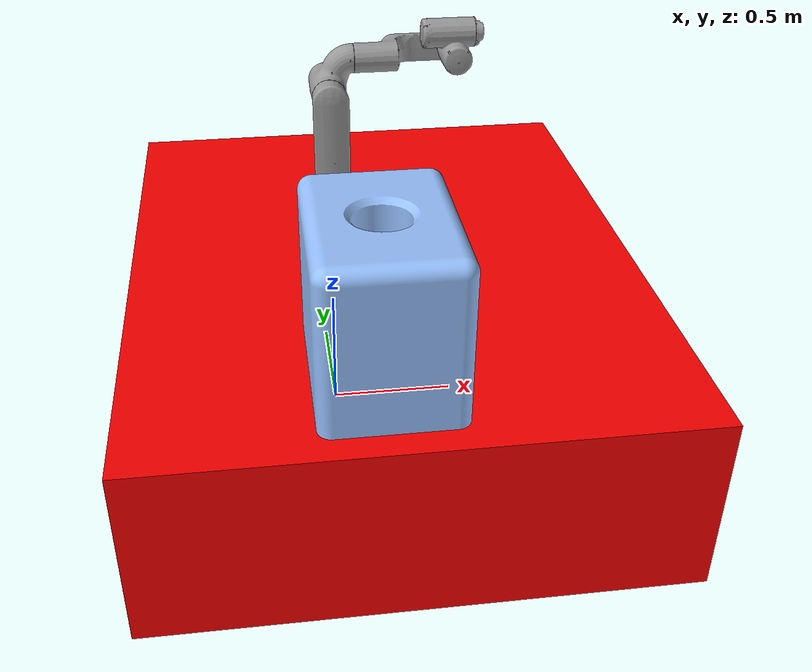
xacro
<?xml version="1.0"?>
<robot xmlns:xacro="http://www.ros.org/wiki/xacro" name="abb_gofa">
    <xacro:arg name="initial_positions_file" default="initial_positions.yaml" />

    <!-- Import abb_gofa urdf file -->
    <xacro:include filename="$(find abb_gofa_description)/urdf/abb_gofa/abb_gofa.urdf.xacro" />

    <!-- Import control_xacro -->
    <xacro:include filename="abb_gofa.ros2_control.xacro" />

    <xacro:abb_gofa_ros2_control name="FakeSystem" initial_positions_file="$(arg initial_positions_file)"/>

</robot>

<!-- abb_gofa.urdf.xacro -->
<robot name="abb_gofa" xmlns:xacro="http://www.ros.org/wiki/xacro">
    <xacro:include filename="$(find abb_gofa_description)/urdf/abb_gofa/abb_gofa_macro.urdf.xacro"/>
    <xacro:abb_gofa />

    <link name="world"> </link>

    <link name='table'>
      <inertial>
        <origin xyz="0 0 0" rpy="0 0 0"/>
        <mass value="100"/>
        <inertia ixx="0.01"  ixy="0"  ixz="0" iyy="0.01" iyz="0" izz="0.01" />
      </inertial>
      <collision name='collision'>
        <origin xyz="0 0 0" rpy=" 0 0 0"/>
        <geometry>
          <box size = "2.0 2.5 0.7"/>
        </geometry>
      </collision>
      <visual name='chassis_visual'>
        <origin xyz="0 0 0" rpy=" 0 0 0"/>
        <geometry>
          <box size = "2.0 2.5 0.7"/>
        </geometry>
        <material name="black">
          <color rgba="1 0 0 1"/>
        </material>
      </visual>
    </link>

    <joint name="table_world" type="fixed">
      <parent link="world" />
      <child link = "table" />
      <origin xyz="0.2 0.0 0.35" rpy="0.0 0.0 0.0" />
    </joint>
    <joint name="table_base" type="fixed">
      <parent link="table" />
      <child link = "base_link" />
      <origin xyz="-0.2 -0.0 0.355" rpy="0.0 0.0 0.0" />
    </joint>

    <link name="NMR">
      <visual>
        <origin xyz="0.0 0.0 0.0" rpy="0.0 0.0 0.0"/>
        <geometry>
            <mesh filename="file://$(find abb_gofa_description)/meshes/NMR/NMR.dae"/>
        </geometry>
      </visual>
      <collision>
        <origin xyz="0.0 0.0 0.0" rpy="0.0 0.0 0.0"/>
        <geometry>
            <mesh filename="file://$(find abb_gofa_description)/meshes/NMR/NMR.dae"/>
        </geometry>
      </collision>
      <inertial>
        <origin xyz="0.0 0.0 0.0" rpy="0.0 0.0 0.0"/>
        <mass value="50"/>
        <inertia ixx="0.01" ixy="0.0" ixz="0.0" iyy="0.01" iyz="0.0" izz="0.01"/>
      </inertial>
    </link>

    <joint name="world2NMR" type="fixed">
      <parent link="world" />
      <child link = "NMR" />
      <origin xyz="0.1 -0.8 0.70" rpy="0.0 0.0 -1.570796"/>
    </joint>

</robot>

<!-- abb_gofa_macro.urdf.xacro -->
<robot xmlns:xacro="http://www.ros.org/wiki/xacro">

    <xacro:macro name="abb_gofa">

        <xacro:include filename="$(find abb_gofa_description)/urdf/abb_gofa/abb_gofa_ros2_control.urdf.xacro" />
        <xacro:insert_ros2_control/>

        <!-- BASE LINK -->
        <link name="base_link">
            <visual>
            <origin rpy="0.0 0.0 0.0" xyz="0.0 0.0 0.0"/>
            <geometry>
                <mesh filename="file://$(find abb_gofa_description)/meshes/abb_gofa/visual/base_link.dae"/>
            </geometry>
            <material name="light_grey">
                <color rgba="0.6 0.6 0.6 1.0"/>
            </material>
            </visual>
            <collision>
            <origin rpy="0.0 0.0 0.0" xyz="0.0 0.0 0.0"/>
            <geometry>
                <mesh filename="file://$(find abb_gofa_description)/meshes/abb_gofa/collision/base_link.dae"/>
            </geometry>
            </collision>
            <inertial>
            <origin rpy="0.0 0.0 0.0" xyz="0.0 0.0 0.0"/>
            <mass value="3.5"/>
            <inertia ixx="0.015" ixy="0.0" ixz="0.0" iyy="0.016" iyz="0.0" izz="0.01"/>
            </inertial>
        </link>
        <link name="link_1">
            <visual>
            <origin rpy="0.0 0.0 0.0" xyz="0.0 0.0 0.0"/>
            <geometry>
                <mesh filename="file://$(find abb_gofa_description)/meshes/abb_gofa/visual/link_1.dae"/>
            </geometry>
            <material name="light_grey">
                <color rgba="0.6 0.6 0.6 1.0"/>
            </material>
            </visual>
            <collision>
            <origin rpy="0.0 0.0 0.0" xyz="0.0 0.0 0.0"/>
            <geometry>
                <mesh filename="file://$(find abb_gofa_description)/meshes/abb_gofa/collision/link_1.dae"/>
            </geometry>
            </collision>
            <inertial>
            <origin rpy="0.0 0.0 0.0" xyz="0.0 0.0 0.0"/>
            <mass value="2.8"/>
            <inertia ixx="0.01" ixy="0.0" ixz="0.0" iyy="0.006" iyz="0.0" izz="0.01"/>
            </inertial>
        </link>
        <link name="link_2">
            <visual>
            <origin rpy="0.0 0.0 0.0" xyz="0.0 0.0 0.0"/>
            <geometry>
                <mesh filename="file://$(find abb_gofa_description)/meshes/abb_gofa/visual/link_2.dae"/>
            </geometry>
            <material name="light_grey">
                <color rgba="0.6 0.6 0.6 1.0"/>
            </material>
            </visual>
            <collision>
            <origin rpy="0.0 0.0 0.0" xyz="0.0 0.0 0.0"/>
            <geometry>
                <mesh filename="file://$(find abb_gofa_description)/meshes/abb_gofa/collision/link_2.dae"/>
            </geometry>
            </collision>
            <inertial>
            <origin rpy="0.0 0.0 0.0" xyz="0.0 0.0 0.0"/>
            <mass value="4.29"/>
            <inertia ixx="0.13" ixy="0.0" ixz="0.0" iyy="0.13" iyz="0.0" izz="0.006"/>
            </inertial>
        </link>
        <link name="link_3">
            <visual>
                <origin rpy="0.0 0.0 0.0" xyz="0.0 0.0 0.0"/>
                <geometry>
                    <mesh filename="file://$(find abb_gofa_description)/meshes/abb_gofa/visual/link_3.dae"/>
                </geometry>
                <material name="light_grey">
                    <color rgba="0.6 0.6 0.6 1.0"/>
                </material>
            </visual>
            <collision>
                <origin rpy="0.0 0.0 0.0" xyz="0.0 0.0 0.0"/>
                <geometry>
                    <mesh filename="file://$(find abb_gofa_description)/meshes/abb_gofa/collision/link_3.dae"/>
                </geometry>
            </collision>
            <inertial>
                <origin rpy="0.0 0.0 0.0" xyz="0.0 0.0 0.0"/>
                <mass value="3.4"/>
                <inertia ixx="0.017" ixy="0.0" ixz="0.0" iyy="0.014" iyz="0.0" izz="0.013"/>
            </inertial>
        </link>
        <link name="link_4">
            <visual>
            <origin rpy="0.0 0.0 0.0" xyz="0.0 0.0 0.0"/>
            <geometry>
                <mesh filename="file://$(find abb_gofa_description)/meshes/abb_gofa/visual/link_4.dae"/>
            </geometry>
            <material name="light_grey">
                <color rgba="0.6 0.6 0.6 1.0"/>
            </material>
            </visual>
            <collision>
            <origin rpy="0.0 0.0 0.0" xyz="0.0 0.0 0.0"/>
            <geometry>
                <mesh filename="file://$(find abb_gofa_description)/meshes/abb_gofa/collision/link_4.dae"/>
            </geometry>
            </collision>
            <inertial>
            <origin rpy="0.0 0.0 0.0" xyz="0.0 0.0 0.0"/>
            <mass value="2.8"/>
            <inertia ixx="0.009" ixy="-0.01" ixz="0.0" iyy="0.034" iyz="0.0" izz="0.038"/>
            </inertial>
        </link>
        <link name="link_5">
            <visual>
            <origin rpy="0.0 0.0 0.0" xyz="0.0 0.0 0.0"/>
            <geometry>
                <mesh filename="file://$(find abb_gofa_description)/meshes/abb_gofa/visual/link_5.dae"/>
            </geometry>
            <material name="light_grey">
                <color rgba="0.6 0.6 0.6 1.0"/>
            </material>
            </visual>
            <collision>
            <origin rpy="0.0 0.0 0.0" xyz="0.0 0.0 0.0"/>
            <geometry>
                <mesh filename="file://$(find abb_gofa_description)/meshes/abb_gofa/collision/link_5.dae"/>
            </geometry>
            </collision>
            <inertial>
            <origin rpy="0.0 0.0 0.0" xyz="0.0 0.0 0.0"/>
            <mass value="3.0"/>
            <inertia ixx="0.011" ixy="0.0" ixz="0.0" iyy="0.013" iyz="0.0" izz="0.01"/>
            </inertial>
        </link>
        <link name="link_6">
            <visual>
            <origin rpy="0.0 0.0 0.0" xyz="0.0 0.0 0.0"/>
            <geometry>
                <mesh filename="file://$(find abb_gofa_description)/meshes/abb_gofa/visual/link_6.dae"/>
            </geometry>
            <material name="light_grey">
                <color rgba="0.6 0.6 0.6 1.0"/>
            </material>
            </visual>
            <collision>
            <origin rpy="0.0 0.0 0.0" xyz="0.0 0.0 0.0"/>
            <geometry>
                <mesh filename="file://$(find abb_gofa_description)/meshes/abb_gofa/collision/link_6.dae"/>
            </geometry>
            </collision>
            <inertial>
            <origin rpy="0.0 0.0 0.0" xyz="0.0 0.0 0.0"/>
            <mass value="0.15"/>
            <inertia ixx="0.0001" ixy="0.0" ixz="0.0" iyy="1e-06" iyz="0.0" izz="1e-06"/>
            </inertial>
        </link>
        <link name="flange">
            <inertial>
            <mass value="0.01"/>
            <inertia ixx="1.66666667e-05" ixy="0.0" ixz="0.0" iyy="1.66666667e-05" iyz="0.0" izz="1.66666667e-05"/>
            </inertial>
        </link>
        <link name="tool0">
            <inertial>
            <mass value="0.01"/>
            <inertia ixx="1.66666667e-05" ixy="0.0" ixz="0.0" iyy="1.66666667e-05" iyz="0.0" izz="1.66666667e-05"/>
            </inertial>
        </link>
        <joint name="joint_1" type="revolute">
            <parent link="base_link"/>
            <child link="link_1"/>
            <origin rpy="0.0 0.0 0.0" xyz="0.0 0.0 0.0"/>
            <axis xyz="0.0 0.0 1.0"/>
            <limit effort="0.0" lower="-3.141592653589793" upper="3.141592653589793" velocity="0.0"/>
            <dynamics damping="0.0" friction="0.0"/>
        </joint>
        <joint name="joint_2" type="revolute">
            <parent link="link_1"/>
            <child link="link_2"/>
            <origin rpy="0.0 0.0 0.0" xyz="0.0 -0.086 0.265"/>
            <axis xyz="0.0 1.0 0.0"/>
            <limit effort="0.0" lower="-3.141592653589793" upper="3.141592653589793" velocity="0.0"/>
            <dynamics damping="0.0" friction="0.0"/>
        </joint>
        <joint name="joint_3" type="revolute">
            <parent link="link_2"/>
            <child link="link_3"/>
            <origin rpy="0.0 0.0 0.0" xyz="0.0 0.001 0.444"/>
            <axis xyz="0.0 1.0 0.0"/>
            <limit effort="0.0" lower="-3.9269908169872414" upper="1.4835298641951802" velocity="0.0"/>
            <dynamics damping="0.0" friction="0.0"/>
        </joint>
        <joint name="joint_4" type="revolute">
            <parent link="link_3"/>
            <child link="link_4"/>
            <origin rpy="0.0 0.0 0.0" xyz="0.097 0.085 0.11"/>
            <axis xyz="1.0 0.0 0.0"/>
            <limit effort="0.0" lower="-3.141592653589793" upper="3.141592653589793" velocity="0.0"/>
            <dynamics damping="0.0" friction="0.0"/>
        </joint>
        <joint name="joint_5" type="revolute">
            <parent link="link_4"/>
            <child link="link_5"/>
            <origin rpy="0.0 0.0 0.0" xyz="0.373 0.0745 0.0"/>
            <axis xyz="0.0 1.0 0.0"/>
            <limit effort="0.0" lower="-3.141592653589793" upper="3.141592653589793" velocity="0.0"/>
            <dynamics damping="0.0" friction="0.0"/>
        </joint>
        <joint name="joint_6" type="revolute">
            <parent link="link_5"/>
            <child link="link_6"/>
            <origin rpy="0.0 0.0 0.0" xyz="0.0684 -0.0745 0.08"/>
            <axis xyz="1.0 0.0 0.0"/>
            <limit effort="0.0" lower="-4.71238898038469" upper="4.71238898038469" velocity="0.0"/>
            <dynamics damping="0.0" friction="0.0"/>
        </joint>
        <joint name="joint_6_flange" type="fixed">
            <parent link="link_6"/>
            <child link="flange"/>
            <origin rpy="0.0 0.0 0.0" xyz="0.0326 0.0 -0.0001"/>
        </joint>
        <joint name="flange_tool0" type="fixed">
            <parent link="flange"/>
            <child link="tool0"/>
            <origin rpy="0.0 0.0 0.0" xyz="0.0 0.0 0.0"/>
        </joint>
        <transmission name="transmission_1">
            <type>transmission_interface/SimpleTransmission</type>
            <joint name="joint_1">
            <hardwareInterface>hardware_interface/PositionJointInterface</hardwareInterface>
            </joint>
            <actuator name="joint_1_motor">
            <mechanicalReduction>1.0</mechanicalReduction>
            </actuator>
        </transmission>
        <transmission name="transmission_2">
            <type>transmission_interface/SimpleTransmission</type>
            <joint name="joint_2">
            <hardwareInterface>hardware_interface/PositionJointInterface</hardwareInterface>
            </joint>
            <actuator name="joint_2_motor">
            <mechanicalReduction>1.0</mechanicalReduction>
            </actuator>
        </transmission>
        <transmission name="transmission_3">
            <type>transmission_interface/SimpleTransmission</type>
            <joint name="joint_3">
            <hardwareInterface>hardware_interface/PositionJointInterface</hardwareInterface>
            </joint>
            <actuator name="joint_3_motor">
            <mechanicalReduction>1.0</mechanicalReduction>
            </actuator>
        </transmission>
        <transmission name="transmission_4">
            <type>transmission_interface/SimpleTransmission</type>
            <joint name="joint_4">
            <hardwareInterface>hardware_interface/PositionJointInterface</hardwareInterface>
            </joint>
            <actuator name="joint_4_motor">
            <mechanicalReduction>1.0</mechanicalReduction>
            </actuator>
        </transmission>
        <transmission name="transmission_5">
            <type>transmission_interface/SimpleTransmission</type>
            <joint name="joint_5">
            <hardwareInterface>hardware_interface/PositionJointInterface</hardwareInterface>
            </joint>
            <actuator name="joint_5_motor">
            <mechanicalReduction>1.0</mechanicalReduction>
            </actuator>
        </transmission>
        <transmission name="transmission_6">
            <type>transmission_interface/SimpleTransmission</type>
            <joint name="joint_6">
            <hardwareInterface>hardware_interface/PositionJointInterface</hardwareInterface>
            </joint>
            <actuator name="joint_6_motor">
            <mechanicalReduction>1.0</mechanicalReduction>
            </actuator>
        </transmission>
        <gazebo reference="base_link">
            <turnGravityOff>True</turnGravityOff>
        </gazebo>
        <gazebo reference="link_1">
            <turnGravityOff>True</turnGravityOff>
        </gazebo>
        <gazebo reference="link_2">
            <turnGravityOff>True</turnGravityOff>
        </gazebo>
        <gazebo reference="link_3">
            <turnGravityOff>True</turnGravityOff>
        </gazebo>
        <gazebo reference="link_4">
            <turnGravityOff>True</turnGravityOff>
        </gazebo>
        <gazebo reference="link_5">
            <turnGravityOff>True</turnGravityOff>
        </gazebo>
        <gazebo reference="link_6">
            <turnGravityOff>True</turnGravityOff>
        </gazebo>
    </xacro:macro>
</robot>
